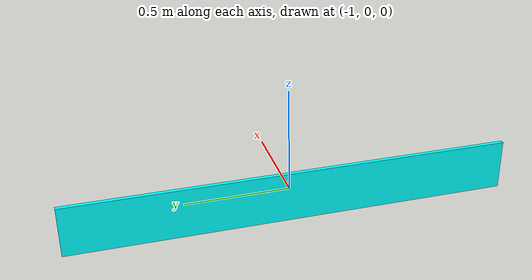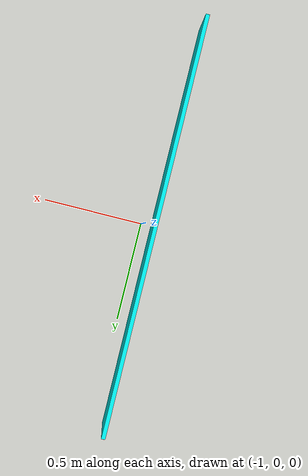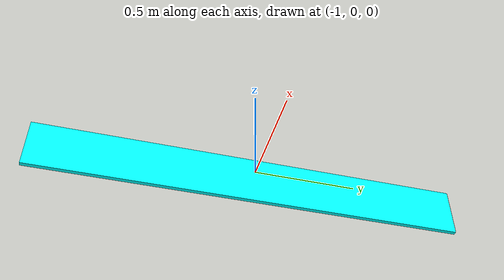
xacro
<?xml version="1.0"?>
<robot name="testbed" xmlns:xacro="http://www.ros.org/wiki/xacro">

  <!-- Colors used for testbed walls. -->
  <material name="Green">
    <color rgba="0.0 1.0 0.0 1.0"/>
  </material>

  <material name="Cyan">
    <color rgba="0.0 1.0 1.0 1.0"/>
  </material>

  <material name="Orange">
    <color rgba="1.0 0.65 0.3 1.0"/>
  </material>

  <material name="Purple">
    <color rgba="0.55 0 0.55 1.0"/>
  </material>

  <!-- Universal Values -->
  <xacro:property name="PI" value="3.14159265358979"/>

  <!-- Property List -->
  <xacro:property name="side_3_length" value="2.135"/>
  <xacro:property name="side_3_width" value="0.02"/>
  <xacro:property name="side_3_height" value="0.245"/>
  <xacro:property name="side_3_mass" value="1.0"/>
  <xacro:property name="side_3_x" value="${-2.135 / 2}"/>
  <xacro:property name="side_3_y" value="0.0"/>
  <xacro:property name="side_3_z" value="0.0"/>
  <xacro:property name="side_3_roll" value="0.0"/>
  <xacro:property name="side_3_pitch" value="0.0"/>
  <xacro:property name="side_3_yaw" value="0.0"/>

  <!-- ############################## LINK ############################## -->

  <link name="side_3_link">
    <visual>
      <material name="Cyan"/>
      <origin xyz="${side_3_x} ${side_3_y} ${side_3_z}" rpy="${side_3_roll} ${side_3_pitch} ${side_3_yaw}"/>
      <geometry>
        <box size="${side_3_width} ${side_3_length} ${side_3_height}"/>
      </geometry>
    </visual>
    <inertial>
      <mass value="${side_3_mass}"/>
      <origin xyz="${side_3_x} ${side_3_y} ${side_3_z}" rpy="${side_3_roll} ${side_3_pitch} ${side_3_yaw}"/>
      <inertia ixx="1.0" ixy="0.0" ixz="0.0" iyy="1.0" iyz="0.0" izz="1.0"/>
    </inertial>
    <collision>
      <origin xyz="${side_3_x} ${side_3_y} ${side_3_z}" rpy="${side_3_roll} ${side_3_pitch} ${side_3_yaw}"/>
      <geometry>
        <box size="${side_3_length} ${side_3_width} ${side_3_height}"/>
      </geometry>
    </collision>
  </link>

  <gazebo reference="side_3_link">
    <material>Gazebo/Orange</material>
    <turnGravityOff>false</turnGravityOff>
  </gazebo>

</robot>
